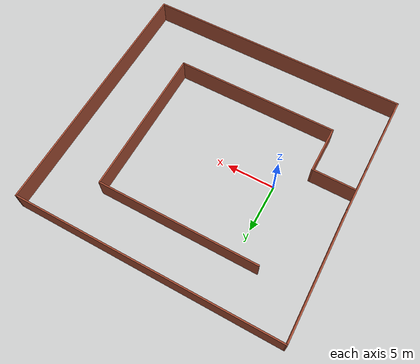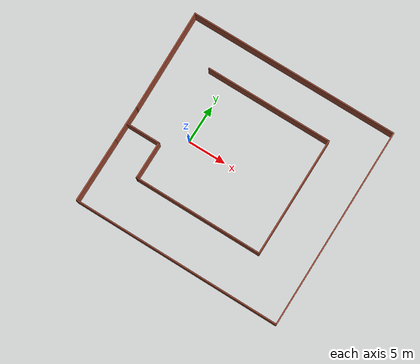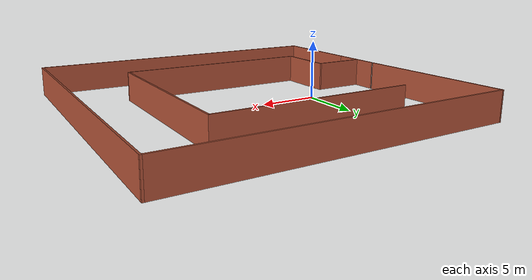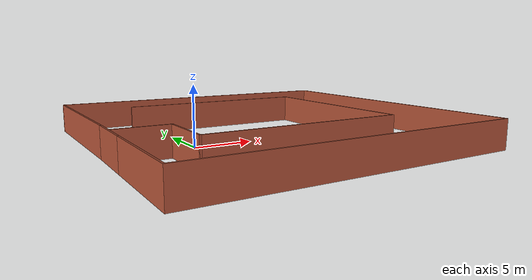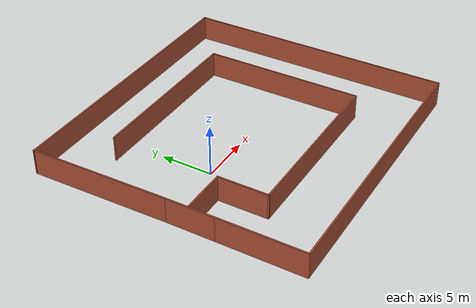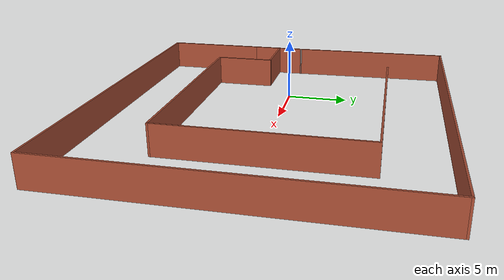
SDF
<?xml version='1.0'?>
<sdf version='1.6'>
  <model name='mazeWorld'>
    <pose frame=''>6.35931 0.035692 0 0 -0 0</pose>
    <link name='Wall_10'>
      <collision name='Wall_10_Collision'>
        <geometry>
          <box>
            <size>13.5523 0.15 2.5</size>
          </box>
        </geometry>
        <pose frame=''>0 0 1.25 0 -0 0</pose>
      </collision>
      <visual name='Wall_10_Visual'>
        <pose frame=''>0 0 1.25 0 -0 0</pose>
        <geometry>
          <box>
            <size>13.5523 0.15 2.5</size>
          </box>
        </geometry>
        <material>
          <script>
            <uri>file://media/materials/scripts/gazebo.material</uri>
            <name>Gazebo/Bricks</name>
          </script>
          <ambient>1 1 1 1</ambient>
        </material>
        <meta>
          <layer>0</layer>
        </meta>
      </visual>
      <pose frame=''>-13.6743 6.47431 0 0 -0 -1.55214</pose>
    </link>
    <link name='Wall_12'>
      <collision name='Wall_12_Collision'>
        <geometry>
          <box>
            <size>16.75 0.15 2.5</size>
          </box>
        </geometry>
        <pose frame=''>0 0 1.25 0 -0 0</pose>
      </collision>
      <visual name='Wall_12_Visual'>
        <pose frame=''>0 0 1.25 0 -0 0</pose>
        <geometry>
          <box>
            <size>16.75 0.15 2.5</size>
          </box>
        </geometry>
        <material>
          <script>
            <uri>file://media/materials/scripts/gazebo.material</uri>
            <name>Gazebo/Bricks</name>
          </script>
          <ambient>1 1 1 1</ambient>
        </material>
        <meta>
          <layer>0</layer>
        </meta>
      </visual>
      <pose frame=''>-0.493258 8.36187 0 0 -0 0</pose>
    </link>
    <link name='Wall_13'>
      <collision name='Wall_13_Collision'>
        <geometry>
          <box>
            <size>15.75 0.15 2.5</size>
          </box>
        </geometry>
        <pose frame=''>0 0 1.25 0 -0 0</pose>
      </collision>
      <visual name='Wall_13_Visual'>
        <pose frame=''>0 0 1.25 0 -0 0</pose>
        <geometry>
          <box>
            <size>15.75 0.15 2.5</size>
          </box>
        </geometry>
        <material>
          <script>
            <uri>file://media/materials/scripts/gazebo.material</uri>
            <name>Gazebo/Bricks</name>
          </script>
          <ambient>1 1 1 1</ambient>
        </material>
        <meta>
          <layer>0</layer>
        </meta>
      </visual>
      <pose frame=''>7.80674 0.561867 0 0 -0 -1.5708</pose>
    </link>
    <link name='Wall_14'>
      <collision name='Wall_14_Collision'>
        <geometry>
          <box>
            <size>17 0.15 2.5</size>
          </box>
        </geometry>
        <pose frame=''>0 0 1.25 0 -0 0</pose>
      </collision>
      <visual name='Wall_14_Visual'>
        <pose frame=''>0 0 1.25 0 -0 0</pose>
        <geometry>
          <box>
            <size>17 0.15 2.5</size>
          </box>
        </geometry>
        <material>
          <script>
            <uri>file://media/materials/scripts/gazebo.material</uri>
            <name>Gazebo/Bricks</name>
          </script>
          <ambient>1 1 1 1</ambient>
        </material>
        <meta>
          <layer>0</layer>
        </meta>
      </visual>
      <pose frame=''>-0.618258 -7.23813 0 0 -0 3.14159</pose>
    </link>
    <link name='Wall_15'>
      <collision name='Wall_15_Collision'>
        <geometry>
          <box>
            <size>5 0.15 2.5</size>
          </box>
        </geometry>
        <pose frame=''>0 0 1.25 0 -0 0</pose>
      </collision>
      <visual name='Wall_15_Visual'>
        <pose frame=''>0 0 1.25 0 -0 0</pose>
        <geometry>
          <box>
            <size>5 0.15 2.5</size>
          </box>
        </geometry>
        <material>
          <script>
            <uri>file://media/materials/scripts/gazebo.material</uri>
            <name>Gazebo/Bricks</name>
          </script>
          <ambient>1 1 1 1</ambient>
        </material>
        <meta>
          <layer>0</layer>
        </meta>
      </visual>
      <pose frame=''>-9.04326 -4.81313 0 0 -0 1.5708</pose>
    </link>
    <link name='Wall_16'>
      <collision name='Wall_16_Collision'>
        <geometry>
          <box>
            <size>4.5 0.15 2.5</size>
          </box>
        </geometry>
        <pose frame=''>0 0 1.25 0 -0 0</pose>
      </collision>
      <visual name='Wall_16_Visual'>
        <pose frame=''>0 0 1.25 0 -0 0</pose>
        <geometry>
          <box>
            <size>4.5 0.15 2.5</size>
          </box>
        </geometry>
        <material>
          <script>
            <uri>file://media/materials/scripts/gazebo.material</uri>
            <name>Gazebo/Bricks</name>
          </script>
          <ambient>1 1 1 1</ambient>
        </material>
        <meta>
          <layer>0</layer>
        </meta>
      </visual>
      <pose frame=''>-11.2183 -2.38813 0 0 -0 3.14159</pose>
    </link>
    <link name='Wall_2'>
      <collision name='Wall_2_Collision'>
        <geometry>
          <box>
            <size>4.75 0.15 2.5</size>
          </box>
        </geometry>
        <pose frame=''>0 0 1.25 0 -0 0</pose>
      </collision>
      <visual name='Wall_2_Visual'>
        <pose frame=''>0 0 1.25 0 -0 0</pose>
        <geometry>
          <box>
            <size>4.75 0.15 2.5</size>
          </box>
        </geometry>
        <material>
          <script>
            <uri>file://media/materials/scripts/gazebo.material</uri>
            <name>Gazebo/Bricks</name>
          </script>
          <ambient>1 1 1 1</ambient>
        </material>
        <meta>
          <layer>0</layer>
        </meta>
      </visual>
      <pose frame=''>-13.5493 -2.52569 0 0 -0 1.5708</pose>
    </link>
    <link name='Wall_3'>
      <collision name='Wall_3_Collision'>
        <geometry>
          <box>
            <size>0.15 0.15 2.5</size>
          </box>
        </geometry>
        <pose frame=''>0 0 1.25 0 -0 0</pose>
      </collision>
      <visual name='Wall_3_Visual'>
        <pose frame=''>0 0 1.25 0 -0 0</pose>
        <geometry>
          <box>
            <size>0.15 0.15 2.5</size>
          </box>
        </geometry>
        <material>
          <script>
            <uri>file://media/materials/scripts/gazebo.material</uri>
            <name>Gazebo/Grey</name>
          </script>
          <ambient>1 1 1 1</ambient>
        </material>
        <meta>
          <layer>0</layer>
        </meta>
      </visual>
      <pose frame=''>-13.5493 -0.225692 0 0 -0 0</pose>
    </link>
    <link name='Wall_4'>
      <collision name='Wall_4_Collision'>
        <geometry>
          <box>
            <size>0.15 0.15 2.5</size>
          </box>
        </geometry>
        <pose frame=''>0 0 1.25 0 -0 0</pose>
      </collision>
      <visual name='Wall_4_Visual'>
        <pose frame=''>0 0 1.25 0 -0 0</pose>
        <geometry>
          <box>
            <size>0.15 0.15 2.5</size>
          </box>
        </geometry>
        <material>
          <script>
            <uri>file://media/materials/scripts/gazebo.material</uri>
            <name>Gazebo/Grey</name>
          </script>
          <ambient>1 1 1 1</ambient>
        </material>
        <meta>
          <layer>0</layer>
        </meta>
      </visual>
      <pose frame=''>-13.5493 -0.225692 0 0 -0 0</pose>
    </link>
    <link name='Wall_6'>
      <collision name='Wall_6_Collision'>
        <geometry>
          <box>
            <size>8.5 0.15 2.5</size>
          </box>
        </geometry>
        <pose frame=''>0 0 1.25 0 -0 0</pose>
      </collision>
      <visual name='Wall_6_Visual'>
        <pose frame=''>0 0 1.25 0 -0 0</pose>
        <geometry>
          <box>
            <size>8.5 0.15 2.5</size>
          </box>
        </geometry>
        <material>
          <script>
            <uri>file://media/materials/scripts/gazebo.material</uri>
            <name>Gazebo/Bricks</name>
          </script>
          <ambient>1 1 1 1</ambient>
        </material>
        <meta>
          <layer>0</layer>
        </meta>
      </visual>
      <pose frame=''>-13.5493 -9.00069 0 0 -0 -1.5708</pose>
    </link>
    <link name='Wall_7'>
      <collision name='Wall_7_Collision'>
        <geometry>
          <box>
            <size>27.5 0.15 2.5</size>
          </box>
        </geometry>
        <pose frame=''>0 0 1.25 0 -0 0</pose>
      </collision>
      <visual name='Wall_7_Visual'>
        <pose frame=''>0 0 1.25 0 -0 0</pose>
        <geometry>
          <box>
            <size>27.5 0.15 2.5</size>
          </box>
        </geometry>
        <material>
          <script>
            <uri>file://media/materials/scripts/gazebo.material</uri>
            <name>Gazebo/Bricks</name>
          </script>
          <ambient>1 1 1 1</ambient>
        </material>
        <meta>
          <layer>0</layer>
        </meta>
      </visual>
      <pose frame=''>0.125693 -13.1757 0 0 -0 0</pose>
    </link>
    <link name='Wall_8'>
      <collision name='Wall_8_Collision'>
        <geometry>
          <box>
            <size>26.5 0.15 2.5</size>
          </box>
        </geometry>
        <pose frame=''>0 0 1.25 0 -0 0</pose>
      </collision>
      <visual name='Wall_8_Visual'>
        <pose frame=''>0 0 1.25 0 -0 0</pose>
        <geometry>
          <box>
            <size>26.5 0.15 2.5</size>
          </box>
        </geometry>
        <material>
          <script>
            <uri>file://media/materials/scripts/gazebo.material</uri>
            <name>Gazebo/Bricks</name>
          </script>
          <ambient>1 1 1 1</ambient>
        </material>
        <meta>
          <layer>0</layer>
        </meta>
      </visual>
      <pose frame=''>13.8007 -0.000692 0 0 -0 1.5708</pose>
    </link>
    <link name='Wall_9'>
      <collision name='Wall_9_Collision'>
        <geometry>
          <box>
            <size>27.75 0.15 2.5</size>
          </box>
        </geometry>
        <pose frame=''>0 0 1.25 0 -0 0</pose>
      </collision>
      <visual name='Wall_9_Visual'>
        <pose frame=''>0 0 1.25 0 -0 0</pose>
        <geometry>
          <box>
            <size>27.75 0.15 2.5</size>
          </box>
        </geometry>
        <material>
          <script>
            <uri>file://media/materials/scripts/gazebo.material</uri>
            <name>Gazebo/Bricks</name>
          </script>
          <ambient>1 1 1 1</ambient>
        </material>
        <meta>
          <layer>0</layer>
        </meta>
      </visual>
      <pose frame=''>0.000693 13.1743 0 0 -0 3.14159</pose>
    </link>
    <static>1</static>
  </model>
</sdf>
